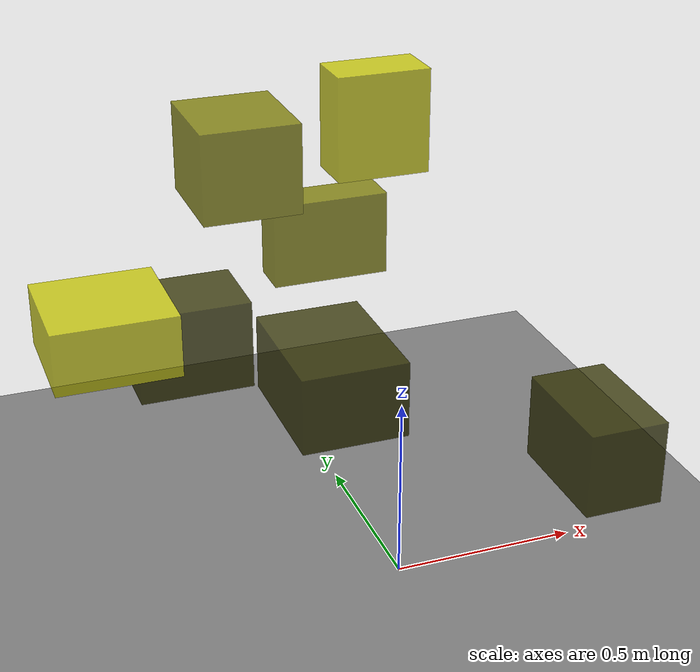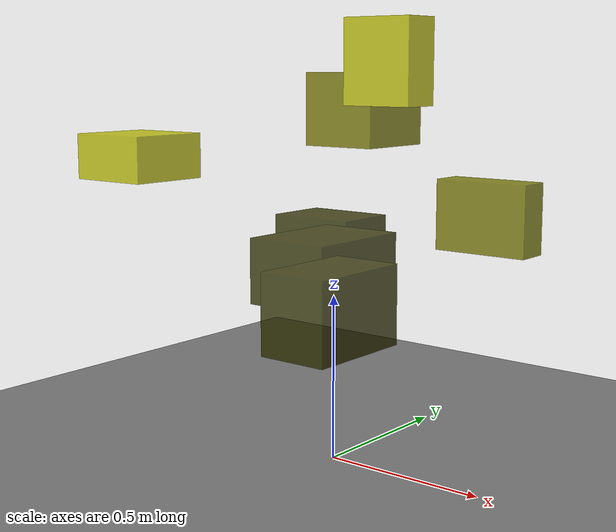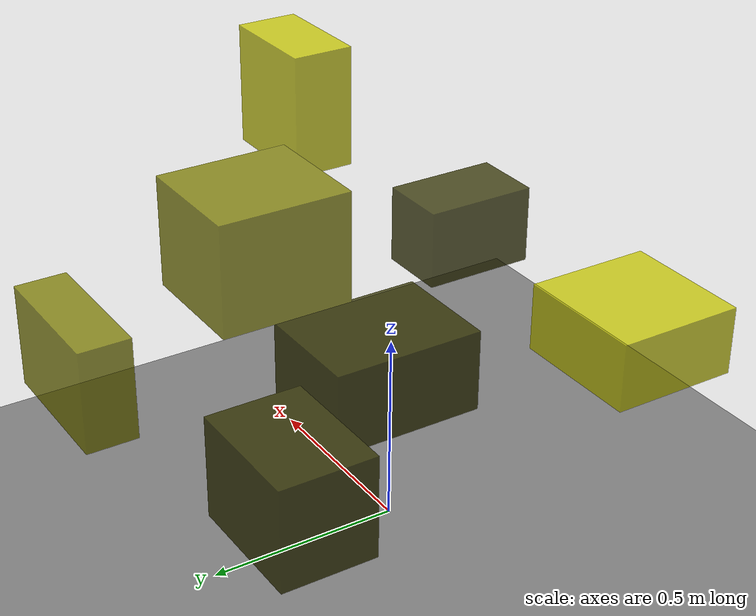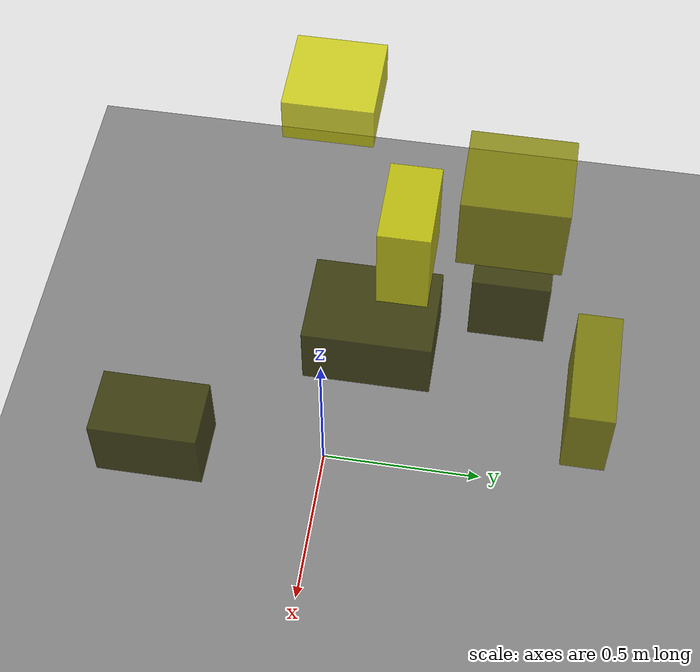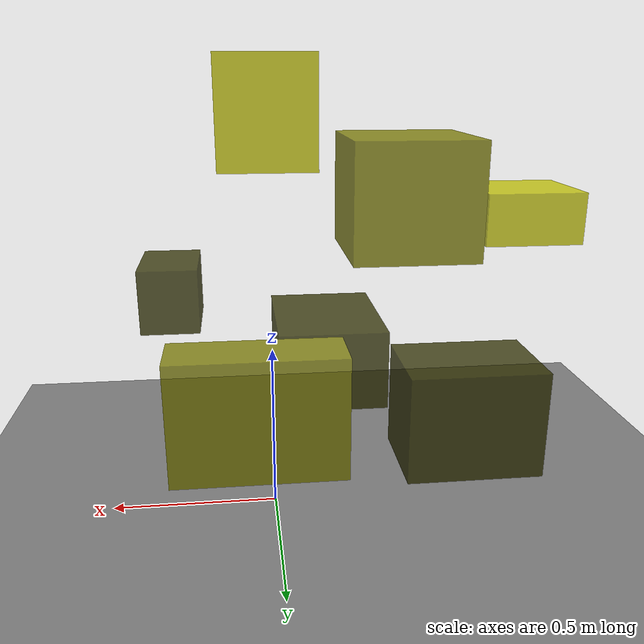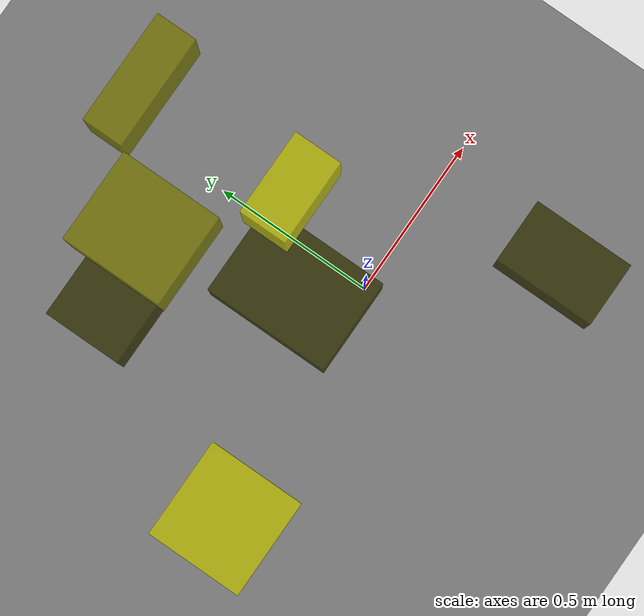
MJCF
<?xml version="1.0"?>
<mujoco model="obstacle_scene">
  <compiler angle="radian" coordinate="local"/>
  <option timestep="0.001" gravity="0 0 -9.81"/>

  <asset>
    <material name="obstacle_mat" rgba="0.8 0.8 0.0 0.8"/>
    <material name="ground_mat" rgba="0.5 0.5 0.5 1"/>
  </asset>

  <worldbody>
    <!-- Ground plane -->
    <geom name="ground" type="plane" size="3 3 0.1" material="ground_mat"/>

    <!-- Obstacles -->
    <body name="obstacle_0" pos="-0.143448 0.132872 0.549170">
      <geom name="obs_0" type="box" size="0.140090 0.188395 0.103293" rgba="0.2 0.2 0.0 0.8"/>
    </body>
    <body name="obstacle_1" pos="-0.269888 0.506217 1.028714">
      <geom name="obs_1" type="box" size="0.132892 0.145821 0.122261" rgba="0.5 0.5 0.0 0.8"/>
    </body>
    <body name="obstacle_2" pos="0.014011 0.245307 1.185020">
      <geom name="obs_2" type="box" size="0.119420 0.067184 0.132994" rgba="0.8 0.8 0.0 0.8"/>
    </body>
    <body name="obstacle_3" pos="0.316324 -0.420048 0.575943">
      <geom name="obs_3" type="box" size="0.095620 0.151234 0.105045" rgba="0.2 0.2 0.0 0.8"/>
    </body>
    <body name="obstacle_4" pos="0.064689 0.777807 0.659627">
      <geom name="obs_4" type="box" size="0.171945 0.061937 0.124281" rgba="0.5 0.5 0.0 0.8"/>
    </body>
    <body name="obstacle_5" pos="-0.749430 -0.076088 0.881405">
      <geom name="obs_5" type="box" size="0.141974 0.137976 0.073764" rgba="0.8 0.8 0.0 0.8"/>
    </body>
    <body name="obstacle_6" pos="-0.426084 0.523049 0.526749">
      <geom name="obs_6" type="box" size="0.156827 0.115719 0.125723" rgba="0.2 0.2 0.0 0.8"/>
    </body>
  </worldbody>
</mujoco>
